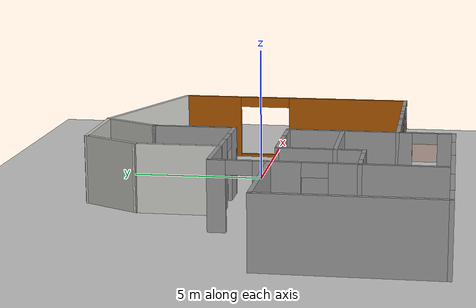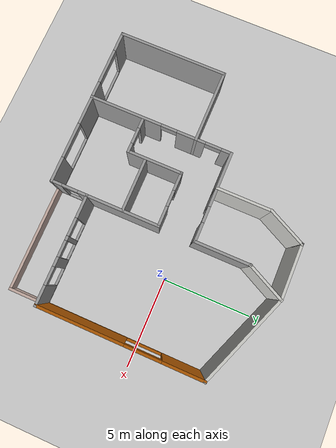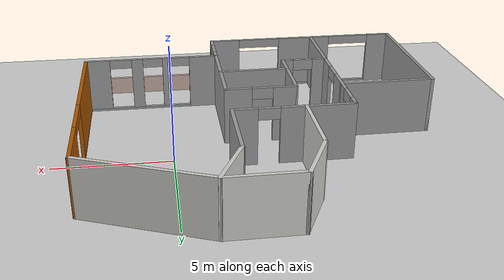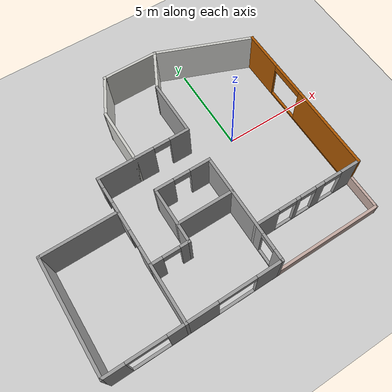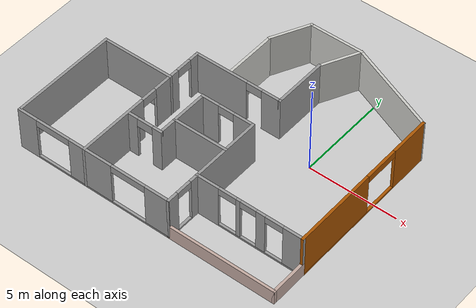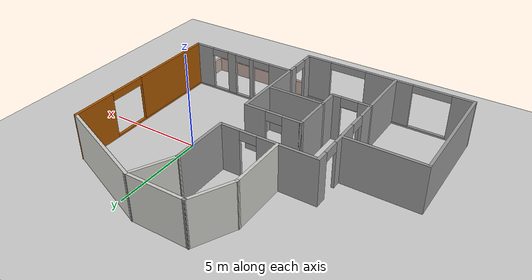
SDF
<sdf version="1.6">
 <world name="default">
  <plugin name="hello" filename="libhello_for_eimer.so"/>
  <light name="sun" type="directional">
   <pose>0 0 10 0 -0 0</pose>
   <diffuse>0.8 0.8 0.8 1</diffuse>
   <specular>0.1 0.1 0.1 1</specular>
   <attenuation>
    <range>1000</range>
    <constant>0.9</constant>
    <linear>0.01</linear>
    <quadratic>0.001</quadratic>
   </attenuation>
   <direction>-0.5 0.5 -1</direction>
  </light>
  <model name="ground_plane">
   <static>1</static>
   <link name="link">
    <collision name="collision">
     <geometry><plane><normal>0 0 1</normal><size>100 100</size></plane></geometry>
     <surface><friction><ode><mu>100</mu><mu2>50</mu2></ode></friction></surface>
    </collision>
    <visual name="visual">
     <cast_shadows>0</cast_shadows>
     <geometry><plane><normal>0 0 1</normal><size>100 100</size></plane></geometry>
     <material>
      <script><uri>file://media/materials/scripts/gazebo.material</uri><name>Gazebo/Grey</name></script>
     </material>
    </visual>
   </link>
  </model>
  <gravity>0 0 -9.8</gravity>
  <magnetic_field>6e-06 2.3e-05 -4.2e-05</magnetic_field>
  <atmosphere type="adiabatic"/>
  <physics name="default_physics" default="0" type="ode">
   <max_step_size>0.001</max_step_size>
   <real_time_factor>1</real_time_factor>
   <real_time_update_rate>1000</real_time_update_rate>
  </physics>
  <scene><ambient>0.4 0.4 0.4 1</ambient><background>0.7 0.7 0.7 1</background><shadows>1</shadows></scene>
  <spherical_coordinates>
   <surface_model>EARTH_WGS84</surface_model>
   <latitude_deg>0</latitude_deg>
   <longitude_deg>0</longitude_deg>
   <elevation>0</elevation>
   <heading_deg>0</heading_deg>
  </spherical_coordinates>
  <model name="Building">
   <pose>-3.80096 -0.84379 0 0 -0 0</pose>
   <link name="Wall_0">
    <collision name="Wall_0_Collision">
     <geometry><box><size>6.15 0.15 2.5</size></box></geometry>
     <pose>0 0 1.25 0 -0 0</pose>
    </collision>
    <visual name="Wall_0_Visual">
     <pose>0 0 1.25 0 -0 0</pose>
     <geometry><box><size>6.15 0.15 2.5</size></box></geometry>
     <material>
      <script><uri>file://media/materials/scripts/gazebo.material</uri><name>Gazebo/Grey</name></script>
      <ambient>1 1 1 1</ambient>
     </material>
     <meta><layer>0</layer></meta>
    </visual>
    <pose>-7.51124 -3.51281 0 0 -0 1.5708</pose>
   </link>
   <link name="Wall_12">
    <pose>-3.01125 -6.51281 0 0 -0 0</pose>
    <visual name="Wall_12_Visual_0">
     <pose>-3.99854 0 1.25 0 -0 0</pose>
     <geometry><box><size>1.15292 0.15 2.5</size></box></geometry>
     <material>
      <script><uri>file://media/materials/scripts/gazebo.material</uri><name>Gazebo/Grey</name></script>
      <ambient>1 1 1 1</ambient>
     </material>
     <meta><layer>0</layer></meta>
    </visual>
    <collision name="Wall_12_Collision_0">
     <geometry><box><size>1.15292 0.15 2.5</size></box></geometry>
     <pose>-3.99854 0 1.25 0 -0 0</pose>
    </collision>
    <visual name="Wall_12_Visual_1">
     <pose>0.57646 0 0.05 0 -0 0</pose>
     <geometry><box><size>7.99708 0.15 0.1</size></box></geometry>
     <material>
      <script><uri>file://media/materials/scripts/gazebo.material</uri><name>Gazebo/Grey</name></script>
      <ambient>1 1 1 1</ambient>
     </material>
     <meta><layer>0</layer></meta>
    </visual>
    <collision name="Wall_12_Collision_1">
     <geometry><box><size>7.99708 0.15 0.1</size></box></geometry>
     <pose>0.57646 0 0.05 0 -0 0</pose>
    </collision>
    <visual name="Wall_12_Visual_2">
     <pose>-0.143108 0 1.3 0 -0 0</pose>
     <geometry><box><size>2.55794 0.15 2.4</size></box></geometry>
     <material>
      <script><uri>file://media/materials/scripts/gazebo.material</uri><name>Gazebo/Grey</name></script>
      <ambient>1 1 1 1</ambient>
     </material>
     <meta><layer>0</layer></meta>
    </visual>
    <collision name="Wall_12_Collision_2">
     <geometry><box><size>2.55794 0.15 2.4</size></box></geometry>
     <pose>-0.143108 0 1.3 0 -0 0</pose>
    </collision>
    <visual name="Wall_12_Visual_3">
     <pose>3.85543 0 1.3 0 -0 0</pose>
     <geometry><box><size>1.43914 0.15 2.4</size></box></geometry>
     <material>
      <script><uri>file://media/materials/scripts/gazebo.material</uri><name>Gazebo/Grey</name></script>
      <ambient>1 1 1 1</ambient>
     </material>
     <meta><layer>0</layer></meta>
    </visual>
    <collision name="Wall_12_Collision_3">
     <geometry><box><size>1.43914 0.15 2.4</size></box></geometry>
     <pose>3.85543 0 1.3 0 -0 0</pose>
    </collision>
    <visual name="Wall_12_Visual_4">
     <pose>-2.42208 0 2.3 0 -0 0</pose>
     <geometry><box><size>2 0.15 0.4</size></box></geometry>
     <material>
      <script><uri>file://media/materials/scripts/gazebo.material</uri><name>Gazebo/Grey</name></script>
      <ambient>1 1 1 1</ambient>
     </material>
     <meta><layer>0</layer></meta>
    </visual>
    <collision name="Wall_12_Collision_4">
     <geometry><box><size>2 0.15 0.4</size></box></geometry>
     <pose>-2.42208 0 2.3 0 -0 0</pose>
    </collision>
    <visual name="Wall_12_Visual_5">
     <pose>2.13586 0 2.3 0 -0 0</pose>
     <geometry><box><size>2 0.15 0.4</size></box></geometry>
     <material>
      <script><uri>file://media/materials/scripts/gazebo.material</uri><name>Gazebo/Grey</name></script>
      <ambient>1 1 1 1</ambient>
     </material>
     <meta><layer>0</layer></meta>
    </visual>
    <collision name="Wall_12_Collision_5">
     <geometry><box><size>2 0.15 0.4</size></box></geometry>
     <pose>2.13586 0 2.3 0 -0 0</pose>
    </collision>
   </link>
   <link name="Wall_26">
    <pose>1.48876 -3.51281 0 0 0 -1.5708</pose>
    <visual name="Wall_26_Visual_0">
     <pose>-0.780552 0 1.25 0 -0 0</pose>
     <geometry><box><size>4.58889 0.15 2.5</size></box></geometry>
     <material>
      <script><uri>file://media/materials/scripts/gazebo.material</uri><name>Gazebo/Grey</name></script>
      <ambient>1 1 1 1</ambient>
     </material>
     <meta><layer>0</layer></meta>
    </visual>
    <collision name="Wall_26_Collision_0">
     <geometry><box><size>4.58889 0.15 2.5</size></box></geometry>
     <pose>-0.780552 0 1.25 0 -0 0</pose>
    </collision>
    <visual name="Wall_26_Visual_1">
     <pose>2.29445 0 0.05 0 -0 0</pose>
     <geometry><box><size>1.5611 0.15 0.1</size></box></geometry>
     <material>
      <script><uri>file://media/materials/scripts/gazebo.material</uri><name>Gazebo/Grey</name></script>
      <ambient>1 1 1 1</ambient>
     </material>
     <meta><layer>0</layer></meta>
    </visual>
    <collision name="Wall_26_Collision_1">
     <geometry><box><size>1.5611 0.15 0.1</size></box></geometry>
     <pose>2.29445 0 0.05 0 -0 0</pose>
    </collision>
    <visual name="Wall_26_Visual_2">
     <pose>2.74445 0 1.3 0 -0 0</pose>
     <geometry><box><size>0.661105 0.15 2.4</size></box></geometry>
     <material>
      <script><uri>file://media/materials/scripts/gazebo.material</uri><name>Gazebo/Grey</name></script>
      <ambient>1 1 1 1</ambient>
     </material>
     <meta><layer>0</layer></meta>
    </visual>
    <collision name="Wall_26_Collision_2">
     <geometry><box><size>0.661105 0.15 2.4</size></box></geometry>
     <pose>2.74445 0 1.3 0 -0 0</pose>
    </collision>
    <visual name="Wall_26_Visual_3">
     <pose>1.96389 0 2.3 0 -0 0</pose>
     <geometry><box><size>0.9 0.15 0.4</size></box></geometry>
     <material>
      <script><uri>file://media/materials/scripts/gazebo.material</uri><name>Gazebo/Grey</name></script>
      <ambient>1 1 1 1</ambient>
     </material>
     <meta><layer>0</layer></meta>
    </visual>
    <collision name="Wall_26_Collision_3">
     <geometry><box><size>0.9 0.15 0.4</size></box></geometry>
     <pose>1.96389 0 2.3 0 -0 0</pose>
    </collision>
   </link>
   <link name="Wall_28">
    <collision name="Wall_28_Collision">
     <geometry><box><size>3.15 0.15 2.5</size></box></geometry>
     <pose>0 0 1.25 0 -0 0</pose>
    </collision>
    <visual name="Wall_28_Visual">
     <pose>0 0 1.25 0 -0 0</pose>
     <geometry><box><size>3.15 0.15 2.5</size></box></geometry>
     <material>
      <script><uri>file://media/materials/scripts/gazebo.material</uri><name>Gazebo/Grey</name></script>
      <ambient>1 1 1 1</ambient>
     </material>
     <meta><layer>0</layer></meta>
    </visual>
    <pose>1.48876 2.98719 0 0 -0 1.5708</pose>
   </link>
   <link name="Wall_30">
    <collision name="Wall_30_Collision">
     <geometry><box><size>2.38607 0.15 2.5</size></box></geometry>
     <pose>0 0 1.25 0 -0 0</pose>
    </collision>
    <visual name="Wall_30_Visual">
     <pose>0 0 1.25 0 -0 0</pose>
     <geometry><box><size>2.38607 0.15 2.5</size></box></geometry>
     <material>
      <script><uri>file://media/materials/scripts/gazebo.material</uri><name>Gazebo/CeilingTiled</name></script>
      <ambient>1 1 1 1</ambient>
     </material>
     <meta><layer>0</layer></meta>
    </visual>
    <pose>1.98876 5.48719 0 0 -0 1.10715</pose>
   </link>
   <link name="Wall_32">
    <pose>7.48876 -0.012811 0 0 0 -1.5708</pose>
    <visual name="Wall_32_Visual_0">
     <pose>-3.40699 0 1.25 0 -0 0</pose>
     <geometry><box><size>2.33601 0.15 2.5</size></box></geometry>
     <material>
      <script><uri>file://media/materials/scripts/gazebo.material</uri><name>Gazebo/Grey</name></script>
      <ambient>0.666667 0.333333 0 1</ambient>
     </material>
     <meta><layer>0</layer></meta>
    </visual>
    <collision name="Wall_32_Collision_0">
     <geometry><box><size>2.33601 0.15 2.5</size></box></geometry>
     <pose>-3.40699 0 1.25 0 -0 0</pose>
    </collision>
    <visual name="Wall_32_Visual_1">
     <pose>1.16801 0 0.05 0 -0 0</pose>
     <geometry><box><size>6.81399 0.15 0.1</size></box></geometry>
     <material>
      <script><uri>file://media/materials/scripts/gazebo.material</uri><name>Gazebo/Grey</name></script>
      <ambient>0.666667 0.333333 0 1</ambient>
     </material>
     <meta><layer>0</layer></meta>
    </visual>
    <collision name="Wall_32_Collision_1">
     <geometry><box><size>6.81399 0.15 0.1</size></box></geometry>
     <pose>1.16801 0 0.05 0 -0 0</pose>
    </collision>
    <visual name="Wall_32_Visual_2">
     <pose>2.16801 0 1.3 0 -0 0</pose>
     <geometry><box><size>4.81399 0.15 2.4</size></box></geometry>
     <material>
      <script><uri>file://media/materials/scripts/gazebo.material</uri><name>Gazebo/Grey</name></script>
      <ambient>0.666667 0.333333 0 1</ambient>
     </material>
     <meta><layer>0</layer></meta>
    </visual>
    <collision name="Wall_32_Collision_2">
     <geometry><box><size>4.81399 0.15 2.4</size></box></geometry>
     <pose>2.16801 0 1.3 0 -0 0</pose>
    </collision>
    <visual name="Wall_32_Visual_3">
     <pose>-1.23899 0 2.3 0 -0 0</pose>
     <geometry><box><size>2 0.15 0.4</size></box></geometry>
     <material>
      <script><uri>file://media/materials/scripts/gazebo.material</uri><name>Gazebo/Grey</name></script>
      <ambient>0.666667 0.333333 0 1</ambient>
     </material>
     <meta><layer>0</layer></meta>
    </visual>
    <collision name="Wall_32_Collision_3">
     <geometry><box><size>2 0.15 0.4</size></box></geometry>
     <pose>-1.23899 0 2.3 0 -0 0</pose>
    </collision>
   </link>
   <link name="Wall_34">
    <collision name="Wall_34_Collision">
     <geometry><box><size>6.15 0.15 0.8</size></box></geometry>
     <pose>0 0 0.4 0 -0 0</pose>
    </collision>
    <visual name="Wall_34_Visual">
     <pose>0 0 0.4 0 -0 0</pose>
     <geometry><box><size>6.15 0.15 0.8</size></box></geometry>
     <material>
      <script><uri>file://media/materials/scripts/gazebo.material</uri><name>Gazebo/Grey</name></script>
      <ambient>0.760784 0.662745 0.627451 1</ambient>
     </material>
     <meta><layer>0</layer></meta>
    </visual>
    <pose>4.48876 -6.51281 0 0 -0 0</pose>
   </link>
   <link name="Wall_36">
    <pose>4.48876 -4.51281 0 0 -0 0</pose>
    <visual name="Wall_36_Visual_0">
     <pose>-2.40473 0 1.25 0 -0 0</pose>
     <geometry><box><size>1.34055 0.15 2.5</size></box></geometry>
     <material>
      <script><uri>file://media/materials/scripts/gazebo.material</uri><name>Gazebo/Grey</name></script>
      <ambient>1 1 1 1</ambient>
     </material>
     <meta><layer>0</layer></meta>
    </visual>
    <collision name="Wall_36_Collision_0">
     <geometry><box><size>1.34055 0.15 2.5</size></box></geometry>
     <pose>-2.40473 0 1.25 0 -0 0</pose>
    </collision>
    <visual name="Wall_36_Visual_1">
     <pose>0.670272 0 0.05 0 -0 0</pose>
     <geometry><box><size>4.80945 0.15 0.1</size></box></geometry>
     <material>
      <script><uri>file://media/materials/scripts/gazebo.material</uri><name>Gazebo/Grey</name></script>
      <ambient>1 1 1 1</ambient>
     </material>
     <meta><layer>0</layer></meta>
    </visual>
    <collision name="Wall_36_Collision_1">
     <geometry><box><size>4.80945 0.15 0.1</size></box></geometry>
     <pose>0.670272 0 0.05 0 -0 0</pose>
    </collision>
    <visual name="Wall_36_Visual_2">
     <pose>-0.610532 0 1.3 0 -0 0</pose>
     <geometry><box><size>0.247846 0.15 2.4</size></box></geometry>
     <material>
      <script><uri>file://media/materials/scripts/gazebo.material</uri><name>Gazebo/Grey</name></script>
      <ambient>1 1 1 1</ambient>
     </material>
     <meta><layer>0</layer></meta>
    </visual>
    <collision name="Wall_36_Collision_2">
     <geometry><box><size>0.247846 0.15 2.4</size></box></geometry>
     <pose>-0.610532 0 1.3 0 -0 0</pose>
    </collision>
    <visual name="Wall_36_Visual_3">
     <pose>0.670143 0 1.3 0 -0 0</pose>
     <geometry><box><size>0.513504 0.15 2.4</size></box></geometry>
     <material>
      <script><uri>file://media/materials/scripts/gazebo.material</uri><name>Gazebo/Grey</name></script>
      <ambient>1 1 1 1</ambient>
     </material>
     <meta><layer>0</layer></meta>
    </visual>
    <collision name="Wall_36_Collision_3">
     <geometry><box><size>0.513504 0.15 2.4</size></box></geometry>
     <pose>0.670143 0 1.3 0 -0 0</pose>
    </collision>
    <visual name="Wall_36_Visual_4">
     <pose>2.50095 0 1.3 0 -0 0</pose>
     <geometry><box><size>1.1481 0.15 2.4</size></box></geometry>
     <material>
      <script><uri>file://media/materials/scripts/gazebo.material</uri><name>Gazebo/Grey</name></script>
      <ambient>1 1 1 1</ambient>
     </material>
     <meta><layer>0</layer></meta>
    </visual>
    <collision name="Wall_36_Collision_4">
     <geometry><box><size>1.1481 0.15 2.4</size></box></geometry>
     <pose>2.50095 0 1.3 0 -0 0</pose>
    </collision>
    <visual name="Wall_36_Visual_5">
     <pose>-1.23446 0 2.3 0 -0 0</pose>
     <geometry><box><size>1 0.15 0.4</size></box></geometry>
     <material>
      <script><uri>file://media/materials/scripts/gazebo.material</uri><name>Gazebo/Grey</name></script>
      <ambient>1 1 1 1</ambient>
     </material>
     <meta><layer>0</layer></meta>
    </visual>
    <collision name="Wall_36_Collision_5">
     <geometry><box><size>1 0.15 0.4</size></box></geometry>
     <pose>-1.23446 0 2.3 0 -0 0</pose>
    </collision>
    <visual name="Wall_36_Visual_6">
     <pose>-0.036609 0 2.3 0 -0 0</pose>
     <geometry><box><size>0.9 0.15 0.4</size></box></geometry>
     <material>
      <script><uri>file://media/materials/scripts/gazebo.material</uri><name>Gazebo/Grey</name></script>
      <ambient>1 1 1 1</ambient>
     </material>
     <meta><layer>0</layer></meta>
    </visual>
    <collision name="Wall_36_Collision_6">
     <geometry><box><size>0.9 0.15 0.4</size></box></geometry>
     <pose>-0.036609 0 2.3 0 -0 0</pose>
    </collision>
    <visual name="Wall_36_Visual_7">
     <pose>1.4269 0 2.3 0 -0 0</pose>
     <geometry><box><size>1 0.15 0.4</size></box></geometry>
     <material>
      <script><uri>file://media/materials/scripts/gazebo.material</uri><name>Gazebo/Grey</name></script>
      <ambient>1 1 1 1</ambient>
     </material>
     <meta><layer>0</layer></meta>
    </visual>
    <collision name="Wall_36_Collision_7">
     <geometry><box><size>1 0.15 0.4</size></box></geometry>
     <pose>1.4269 0 2.3 0 -0 0</pose>
    </collision>
   </link>
   <link name="Wall_38">
    <pose>-1.01124 1.48719 0 0 -0 0</pose>
    <visual name="Wall_38_Visual_0">
     <pose>-1.0103 0 1.25 0 -0 0</pose>
     <geometry><box><size>3.1294 0.15 2.5</size></box></geometry>
     <material>
      <script><uri>file://media/materials/scripts/gazebo.material</uri><name>Gazebo/Grey</name></script>
      <ambient>1 1 1 1</ambient>
     </material>
     <meta><layer>0</layer></meta>
    </visual>
    <collision name="Wall_38_Collision_0">
     <geometry><box><size>3.1294 0.15 2.5</size></box></geometry>
     <pose>-1.0103 0 1.25 0 -0 0</pose>
    </collision>
    <visual name="Wall_38_Visual_1">
     <pose>2.0147 0 1.25 0 -0 0</pose>
     <geometry><box><size>1.1206 0.15 2.5</size></box></geometry>
     <material>
      <script><uri>file://media/materials/scripts/gazebo.material</uri><name>Gazebo/Grey</name></script>
      <ambient>1 1 1 1</ambient>
     </material>
     <meta><layer>0</layer></meta>
    </visual>
    <collision name="Wall_38_Collision_1">
     <geometry><box><size>1.1206 0.15 2.5</size></box></geometry>
     <pose>2.0147 0 1.25 0 -0 0</pose>
    </collision>
    <visual name="Wall_38_Visual_2">
     <pose>1.0044 0 2.25 0 -0 0</pose>
     <geometry><box><size>0.9 0.15 0.5</size></box></geometry>
     <material>
      <script><uri>file://media/materials/scripts/gazebo.material</uri><name>Gazebo/Grey</name></script>
      <ambient>1 1 1 1</ambient>
     </material>
     <meta><layer>0</layer></meta>
    </visual>
    <collision name="Wall_38_Collision_2">
     <geometry><box><size>0.9 0.15 0.5</size></box></geometry>
     <pose>1.0044 0 2.25 0 -0 0</pose>
    </collision>
   </link>
   <link name="Wall_4">
    <pose>-3.51125 -2.51281 0 0 -0 1.5708</pose>
    <visual name="Wall_4_Visual_0">
     <pose>-2.02622 0 1.25 0 -0 0</pose>
     <geometry><box><size>4.09757 0.15 2.5</size></box></geometry>
     <material>
      <script><uri>file://media/materials/scripts/gazebo.material</uri><name>Gazebo/Grey</name></script>
      <ambient>1 1 1 1</ambient>
     </material>
     <meta><layer>0</layer></meta>
    </visual>
    <collision name="Wall_4_Collision_0">
     <geometry><box><size>4.09757 0.15 2.5</size></box></geometry>
     <pose>-2.02622 0 1.25 0 -0 0</pose>
    </collision>
    <visual name="Wall_4_Visual_1">
     <pose>1.72967 0 1.25 0 -0 0</pose>
     <geometry><box><size>1.6142 0.15 2.5</size></box></geometry>
     <material>
      <script><uri>file://media/materials/scripts/gazebo.material</uri><name>Gazebo/Grey</name></script>
      <ambient>1 1 1 1</ambient>
     </material>
     <meta><layer>0</layer></meta>
    </visual>
    <collision name="Wall_4_Collision_1">
     <geometry><box><size>1.6142 0.15 2.5</size></box></geometry>
     <pose>1.72967 0 1.25 0 -0 0</pose>
    </collision>
    <visual name="Wall_4_Visual_2">
     <pose>3.75588 0 1.25 0 -0 0</pose>
     <geometry><box><size>0.638237 0.15 2.5</size></box></geometry>
     <material>
      <script><uri>file://media/materials/scripts/gazebo.material</uri><name>Gazebo/Grey</name></script>
      <ambient>1 1 1 1</ambient>
     </material>
     <meta><layer>0</layer></meta>
    </visual>
    <collision name="Wall_4_Collision_2">
     <geometry><box><size>0.638237 0.15 2.5</size></box></geometry>
     <pose>3.75588 0 1.25 0 -0 0</pose>
    </collision>
    <visual name="Wall_4_Visual_3">
     <pose>0.472567 0 2.25 0 -0 0</pose>
     <geometry><box><size>0.9 0.15 0.5</size></box></geometry>
     <material>
      <script><uri>file://media/materials/scripts/gazebo.material</uri><name>Gazebo/Grey</name></script>
      <ambient>1 1 1 1</ambient>
     </material>
     <meta><layer>0</layer></meta>
    </visual>
    <collision name="Wall_4_Collision_3">
     <geometry><box><size>0.9 0.15 0.5</size></box></geometry>
     <pose>0.472567 0 2.25 0 -0 0</pose>
    </collision>
    <visual name="Wall_4_Visual_4">
     <pose>2.98676 0 2.25 0 -0 0</pose>
     <geometry><box><size>0.9 0.15 0.5</size></box></geometry>
     <material>
      <script><uri>file://media/materials/scripts/gazebo.material</uri><name>Gazebo/Grey</name></script>
      <ambient>1 1 1 1</ambient>
     </material>
     <meta><layer>0</layer></meta>
    </visual>
    <collision name="Wall_4_Collision_4">
     <geometry><box><size>0.9 0.15 0.5</size></box></geometry>
     <pose>2.98676 0 2.25 0 -0 0</pose>
    </collision>
   </link>
   <link name="Wall_40">
    <pose>-0.011245 -0.512811 0 0 -0 0</pose>
    <visual name="Wall_40_Visual_0">
     <pose>-1.04047 0 1.25 0 -0 0</pose>
     <geometry><box><size>1.06906 0.15 2.5</size></box></geometry>
     <material>
      <script><uri>file://media/materials/scripts/gazebo.material</uri><name>Gazebo/Grey</name></script>
      <ambient>1 1 1 1</ambient>
     </material>
     <meta><layer>0</layer></meta>
    </visual>
    <collision name="Wall_40_Collision_0">
     <geometry><box><size>1.06906 0.15 2.5</size></box></geometry>
     <pose>-1.04047 0 1.25 0 -0 0</pose>
    </collision>
    <visual name="Wall_40_Visual_1">
     <pose>0.984528 0 1.25 0 -0 0</pose>
     <geometry><box><size>1.18094 0.15 2.5</size></box></geometry>
     <material>
      <script><uri>file://media/materials/scripts/gazebo.material</uri><name>Gazebo/Grey</name></script>
      <ambient>1 1 1 1</ambient>
     </material>
     <meta><layer>0</layer></meta>
    </visual>
    <collision name="Wall_40_Collision_1">
     <geometry><box><size>1.18094 0.15 2.5</size></box></geometry>
     <pose>0.984528 0 1.25 0 -0 0</pose>
    </collision>
    <visual name="Wall_40_Visual_2">
     <pose>-0.055943 0 2.25 0 -0 0</pose>
     <geometry><box><size>0.9 0.15 0.5</size></box></geometry>
     <material>
      <script><uri>file://media/materials/scripts/gazebo.material</uri><name>Gazebo/Grey</name></script>
      <ambient>1 1 1 1</ambient>
     </material>
     <meta><layer>0</layer></meta>
    </visual>
    <collision name="Wall_40_Collision_2">
     <geometry><box><size>0.9 0.15 0.5</size></box></geometry>
     <pose>-0.055943 0 2.25 0 -0 0</pose>
    </collision>
   </link>
   <link name="Wall_42">
    <collision name="Wall_42_Collision">
     <geometry><box><size>3.15 0.15 2.5</size></box></geometry>
     <pose>0 0 1.25 0 -0 0</pose>
    </collision>
    <visual name="Wall_42_Visual">
     <pose>0 0 1.25 0 -0 0</pose>
     <geometry><box><size>3.15 0.15 2.5</size></box></geometry>
     <material>
      <script><uri>file://media/materials/scripts/gazebo.material</uri><name>Gazebo/Grey</name></script>
      <ambient>1 1 1 1</ambient>
     </material>
     <meta><layer>0</layer></meta>
    </visual>
    <pose>-0.011245 -2.51281 0 0 -0 0</pose>
   </link>
   <link name="Wall_44">
    <collision name="Wall_44_Collision">
     <geometry><box><size>3.15 0.15 2.5</size></box></geometry>
     <pose>0 0 1.25 0 -0 0</pose>
    </collision>
    <visual name="Wall_44_Visual">
     <pose>0 0 1.25 0 -0 0</pose>
     <geometry><box><size>3.15 0.15 2.5</size></box></geometry>
     <material>
      <script><uri>file://media/materials/scripts/gazebo.material</uri><name>Gazebo/Grey</name></script>
      <ambient>1 1 1 1</ambient>
     </material>
     <meta><layer>0</layer></meta>
    </visual>
    <pose>-1.51124 -2.01281 0 0 0 -1.5708</pose>
   </link>
   <link name="Wall_46">
    <pose>-2.51125 -3.51281 0 0 -0 0</pose>
    <visual name="Wall_46_Visual_0">
     <pose>-0.727172 0 1.25 0 -0 0</pose>
     <geometry><box><size>0.695655 0.15 2.5</size></box></geometry>
     <material>
      <script><uri>file://media/materials/scripts/gazebo.material</uri><name>Gazebo/Grey</name></script>
      <ambient>1 1 1 1</ambient>
     </material>
     <meta><layer>0</layer></meta>
    </visual>
    <collision name="Wall_46_Collision_0">
     <geometry><box><size>0.695655 0.15 2.5</size></box></geometry>
     <pose>-0.727172 0 1.25 0 -0 0</pose>
    </collision>
    <visual name="Wall_46_Visual_1">
     <pose>0.797828 0 1.25 0 -0 0</pose>
     <geometry><box><size>0.554345 0.15 2.5</size></box></geometry>
     <material>
      <script><uri>file://media/materials/scripts/gazebo.material</uri><name>Gazebo/Grey</name></script>
      <ambient>1 1 1 1</ambient>
     </material>
     <meta><layer>0</layer></meta>
    </visual>
    <collision name="Wall_46_Collision_1">
     <geometry><box><size>0.554345 0.15 2.5</size></box></geometry>
     <pose>0.797828 0 1.25 0 -0 0</pose>
    </collision>
    <visual name="Wall_46_Visual_2">
     <pose>0.070655 0 2.25 0 -0 0</pose>
     <geometry><box><size>0.9 0.15 0.5</size></box></geometry>
     <material>
      <script><uri>file://media/materials/scripts/gazebo.material</uri><name>Gazebo/Grey</name></script>
      <ambient>1 1 1 1</ambient>
     </material>
     <meta><layer>0</layer></meta>
    </visual>
    <collision name="Wall_46_Collision_2">
     <geometry><box><size>0.9 0.15 0.5</size></box></geometry>
     <pose>0.070655 0 2.25 0 -0 0</pose>
    </collision>
   </link>
   <link name="Wall_48">
    <collision name="Wall_48_Collision">
     <geometry><box><size>4.15 0.15 2.5</size></box></geometry>
     <pose>0 0 1.25 0 -0 0</pose>
    </collision>
    <visual name="Wall_48_Visual">
     <pose>0 0 1.25 0 -0 0</pose>
     <geometry><box><size>4.15 0.15 2.5</size></box></geometry>
     <material>
      <script><uri>file://media/materials/scripts/gazebo.material</uri><name>Gazebo/Grey</name></script>
      <ambient>1 1 1 1</ambient>
     </material>
     <meta><layer>0</layer></meta>
    </visual>
    <pose>-5.51124 -0.512811 0 0 -0 0</pose>
   </link>
   <link name="Wall_50">
    <collision name="Wall_50_Collision">
     <geometry><box><size>3.15 0.15 2.5</size></box></geometry>
     <pose>0 0 1.25 0 -0 0</pose>
    </collision>
    <visual name="Wall_50_Visual">
     <pose>0 0 1.25 0 -0 0</pose>
     <geometry><box><size>3.15 0.15 2.5</size></box></geometry>
     <material>
      <script><uri>file://media/materials/scripts/gazebo.material</uri><name>Gazebo/CeilingTiled</name></script>
      <ambient>1 1 1 1</ambient>
     </material>
     <meta><layer>0</layer></meta>
    </visual>
    <pose>0.988755 6.48719 0 0 -0 0</pose>
   </link>
   <link name="Wall_52">
    <collision name="Wall_52_Collision">
     <geometry><box><size>5.53517 0.15 2.5</size></box></geometry>
     <pose>0 0 1.25 0 -0 0</pose>
    </collision>
    <visual name="Wall_52_Visual">
     <pose>0 0 1.25 0 -0 0</pose>
     <geometry><box><size>5.53517 0.15 2.5</size></box></geometry>
     <material>
      <script><uri>file://media/materials/scripts/gazebo.material</uri><name>Gazebo/CeilingTiled</name></script>
      <ambient>1 1 1 1</ambient>
     </material>
     <meta><layer>0</layer></meta>
    </visual>
    <pose>4.98876 5.48719 0 0 0 -0.380506</pose>
   </link>
   <link name="Wall_54">
    <collision name="Wall_54_Collision">
     <geometry><box><size>2.15 0.15 0.8</size></box></geometry>
     <pose>0 0 0.4 0 -0 0</pose>
    </collision>
    <visual name="Wall_54_Visual">
     <pose>0 0 0.4 0 -0 0</pose>
     <geometry><box><size>2.15 0.15 0.8</size></box></geometry>
     <material>
      <script><uri>file://media/materials/scripts/gazebo.material</uri><name>Gazebo/Grey</name></script>
      <ambient>0.760784 0.662745 0.627451 1</ambient>
     </material>
     <meta><layer>0</layer></meta>
    </visual>
    <pose>7.48876 -5.51281 0 0 0 -1.5708</pose>
   </link>
   <link name="Wall_6">
    <collision name="Wall_6_Collision">
     <geometry><box><size>2.38607 0.15 2.5</size></box></geometry>
     <pose>0 0 1.25 0 -0 0</pose>
    </collision>
    <visual name="Wall_6_Visual">
     <pose>0 0 1.25 0 -0 0</pose>
     <geometry><box><size>2.38607 0.15 2.5</size></box></geometry>
     <material>
      <script><uri>file://media/materials/scripts/gazebo.material</uri><name>Gazebo/CeilingTiled</name></script>
      <ambient>1 1 1 1</ambient>
     </material>
     <meta><layer>0</layer></meta>
    </visual>
    <pose>-1.01124 5.48719 0 0 -0 1.10715</pose>
   </link>
   <link name="Wall_7">
    <collision name="Wall_7_Collision">
     <geometry><box><size>0.15 0.15 2.5</size></box></geometry>
     <pose>0 0 1.25 0 -0 0</pose>
    </collision>
    <visual name="Wall_7_Visual">
     <pose>0 0 1.25 0 -0 0</pose>
     <geometry><box><size>0.15 0.15 2.5</size></box></geometry>
     <material>
      <script><uri>file://media/materials/scripts/gazebo.material</uri><name>Gazebo/Grey</name></script>
      <ambient>1 1 1 1</ambient>
     </material>
     <meta><layer>0</layer></meta>
    </visual>
    <pose>-0.511245 6.48719 0 0 -0 0</pose>
   </link>
   <link name="Wall_9">
    <collision name="Wall_9_Collision">
     <geometry><box><size>3.15 0.15 2.5</size></box></geometry>
     <pose>0 0 1.25 0 -0 0</pose>
    </collision>
    <visual name="Wall_9_Visual">
     <pose>0 0 1.25 0 -0 0</pose>
     <geometry><box><size>3.15 0.15 2.5</size></box></geometry>
     <material>
      <script><uri>file://media/materials/scripts/gazebo.material</uri><name>Gazebo/CeilingTiled</name></script>
      <ambient>1 1 1 1</ambient>
     </material>
     <meta><layer>0</layer></meta>
    </visual>
    <pose>-1.51124 2.98719 0 0 0 -1.5708</pose>
   </link>
   <static>1</static>
  </model>
  <audio><device>default</device></audio>
 </world>
</sdf>
